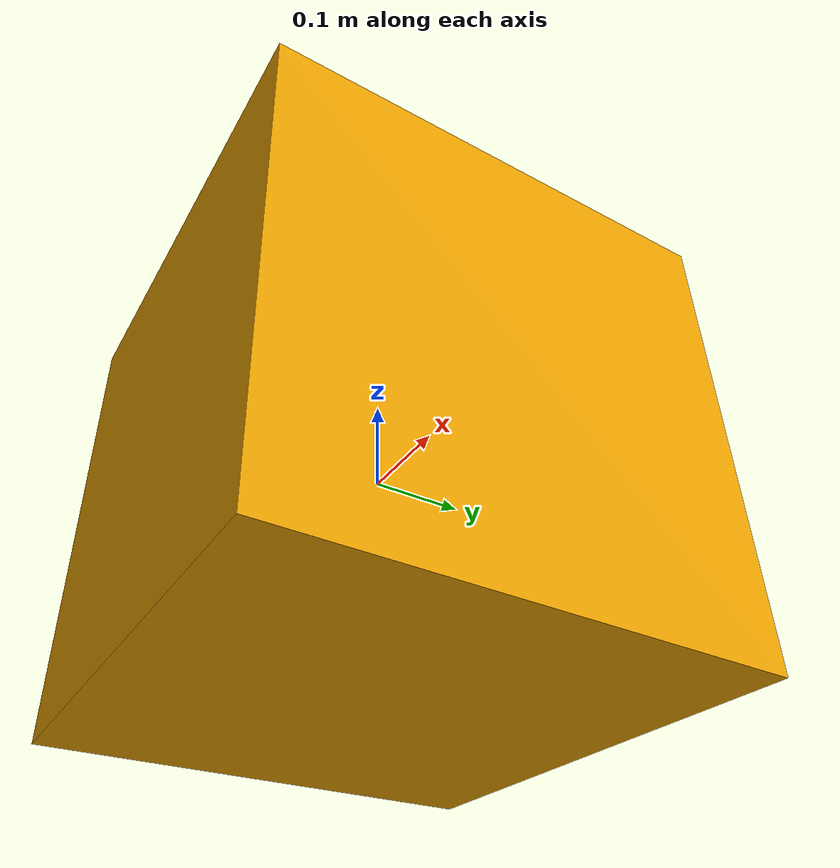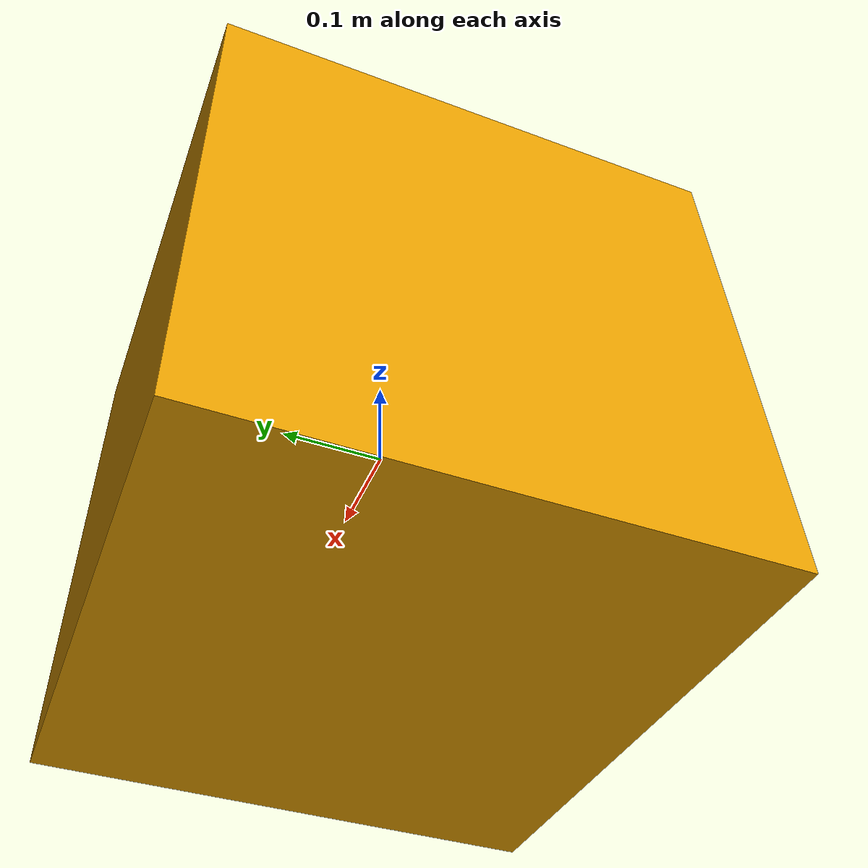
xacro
<?xml version="1.0" ?>
<robot name="ar_tag_0">
    <link name="tag_base_link_0">
        <visual>
            <geometry>
                <mesh filename="package://litebot_description/meshes/ar_tag_0.dae"/>
            </geometry>
            <origin rpy="0 0 0" xyz="0 0 0"/>
        </visual>

        <collision>
            <geometry>
                <box size="0.5 0.5 0.5"/>
            </geometry>
        </collision>

        <inertial>
            <origin rpy="0 0 0" xyz="0 0 0"/>
            <mass value="1.0" />
            <inertia ixx="0.3" ixy="0.0" ixz="0.0"
                     iyy="0.3" iyz="0.0"
                     izz="0.0017" />
        </inertial>
    </link>

    <gazebo reference="tag_base_link_0">
        <kp>100000.0</kp>
        <kd>100000.0</kd>
        <mu1>0.1</mu1>
        <mu2>0.1</mu2>
        <fdir1>1 0 0</fdir1>
    </gazebo>
</robot>
